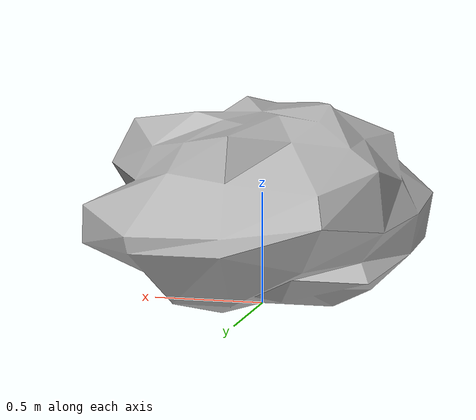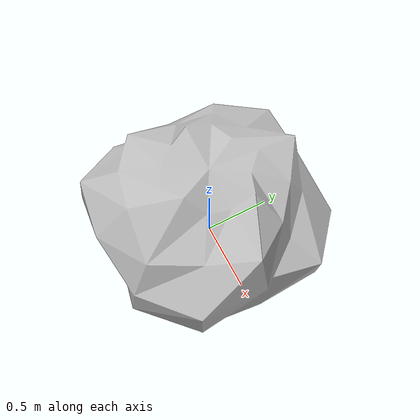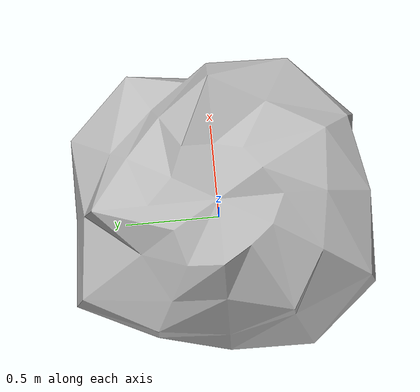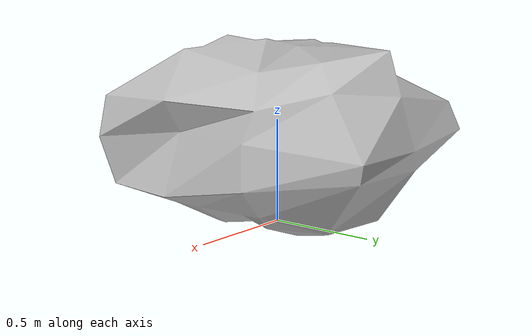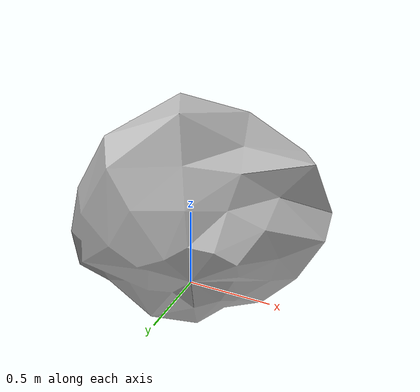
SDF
<?xml version="1.0" ?>
<sdf version="1.8">
  <model name="realistic_boulder">
    <static>true</static>
    <link name="link">
      <collision name="col">
        <geometry>
          <cylinder>
            <radius>0.72</radius>
            <length>0.9</length>
          </cylinder>
        </geometry>
      </collision>
      <visual name="vis">
        <geometry>
          <mesh>
            <uri>meshes/boulder.obj</uri>
          </mesh>
        </geometry>
      </visual>
    </link>
  </model>
</sdf>
